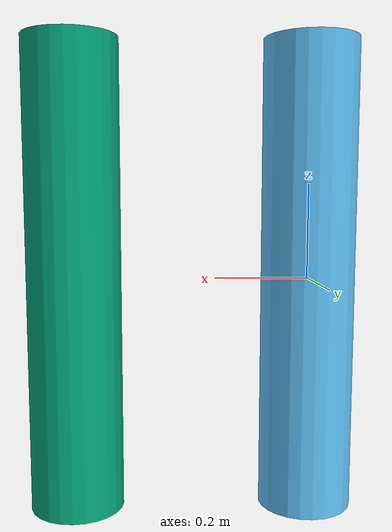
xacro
<?xml version="1.0"?>
<robot xmlns:xacro="http://www.ros.org/wiki/xacro" name="$(arg name)">

    <xacro:arg name="name" default="canopen_test_system"/>

    <xacro:arg name="prefix" default="" />

    <xacro:arg name="bus_config" default="$(find canopen_proxy_driver)/config/pdo_test/pdo.yml"/>
    <xacro:arg name="master_config" default="$(find canopen_proxy_driver)/config/pdo_test/master.dcf"/>
    <xacro:arg name="can_interface_name" default="vcan0"/>
    <xacro:arg name="master_bin" default=""/>

    <!-- ros2 control include -->
    <xacro:include filename="$(find canopen_tests)/urdf/canopen_system/canopen_system.ros2_control.xacro"/>

    <xacro:canopen_ros2_control_test
      name="$(arg name)"
      prefix="$(arg prefix)"
      bus_config="$(arg bus_config)"
      master_config="$(arg master_config)"
      can_interface_name="$(arg can_interface_name)"
      master_bin="$(arg master_bin)"
    />

    <link name="$(arg prefix)base_link"/>
    <link name="$(arg prefix)node_1_link">
      <visual>
        <origin xyz="0 0 0" rpy="0 0 0"/>
        <geometry>
          <cylinder radius="0.1" length="1.0"/>
        </geometry>
      </visual>
      <collision>
        <origin xyz="0 0 0" rpy="0 0 0"/>
        <geometry>
          <cylinder radius="0.1" length="1.0"/>
        </geometry>
      </collision>
    </link>

    <joint name="$(arg prefix)node_1" type="revolute">
        <parent link="$(arg prefix)base_link" />
        <child link="$(arg prefix)node_1_link" />
        <origin xyz="0 0 0" rpy="0 0 0" />
        <axis xyz="0 0 1" />
        <limit lower="${-2*pi}" upper="${2*pi}" effort="10.0" velocity="0.5"/>
    </joint>

    <link name="$(arg prefix)node_2_link">
      <visual>
        <origin xyz="0 0 0" rpy="0 0 0"/>
        <geometry>
          <cylinder radius="0.1" length="1.0"/>
        </geometry>
      </visual>
      <collision>
        <origin xyz="0 0 0" rpy="0 0 0"/>
        <geometry>
          <cylinder radius="0.1" length="1.0"/>
        </geometry>
      </collision>
    </link>

    <joint name="$(arg prefix)node_2" type="revolute">
        <parent link="$(arg prefix)base_link" />
        <child link="$(arg prefix)node_2_link" />
        <origin xyz="0.5 0 0" rpy="0 0 0" />
        <axis xyz="0 0 1" />
        <limit lower="${-2*pi}" upper="${2*pi}" effort="10.0" velocity="0.5"/>
    </joint>

</robot>
